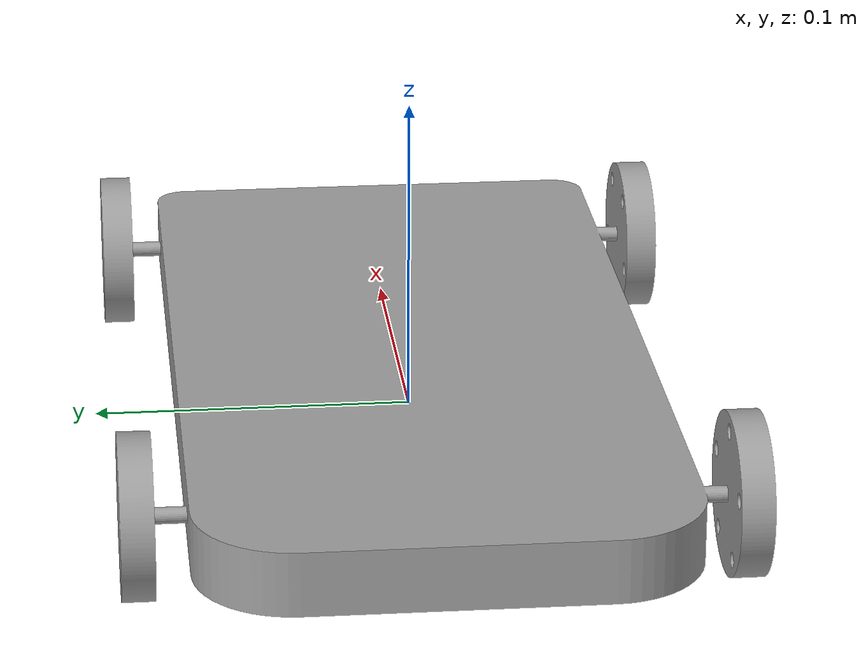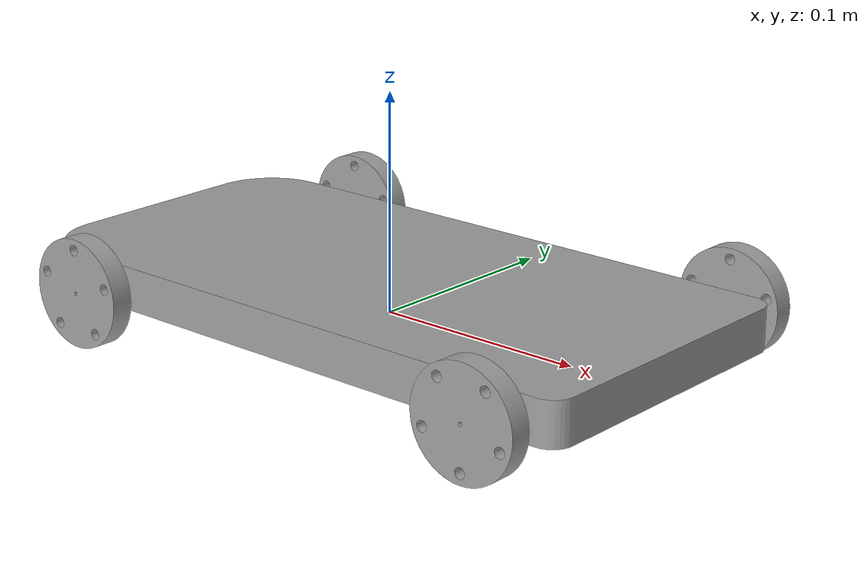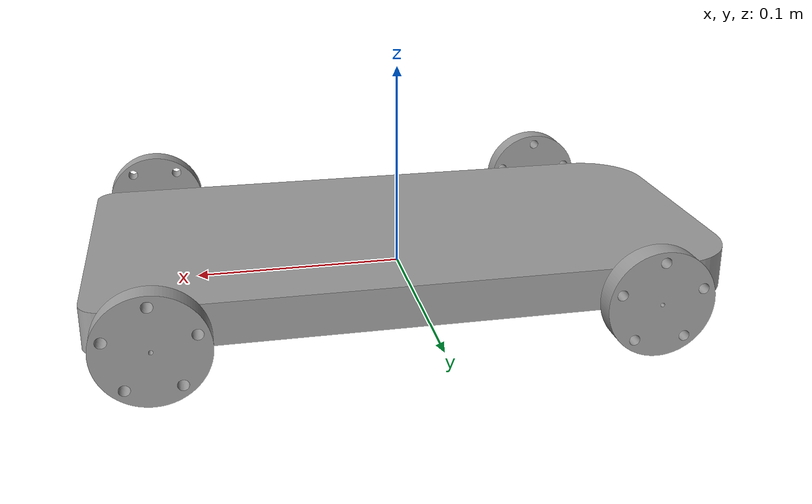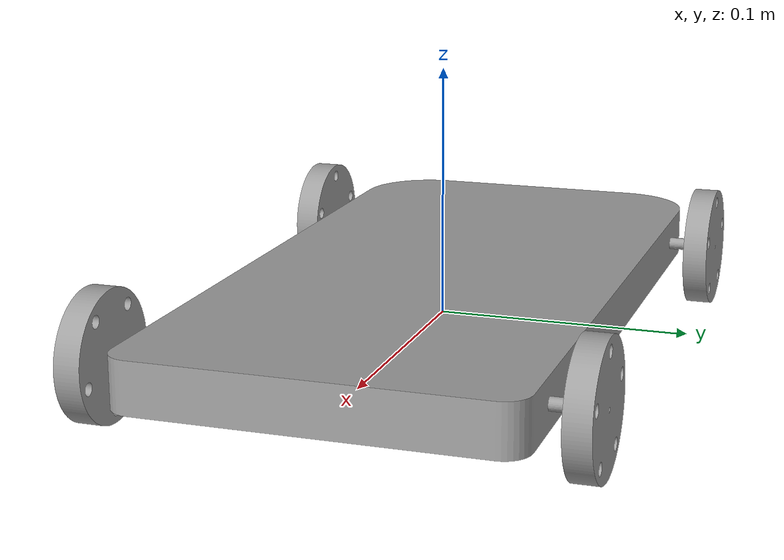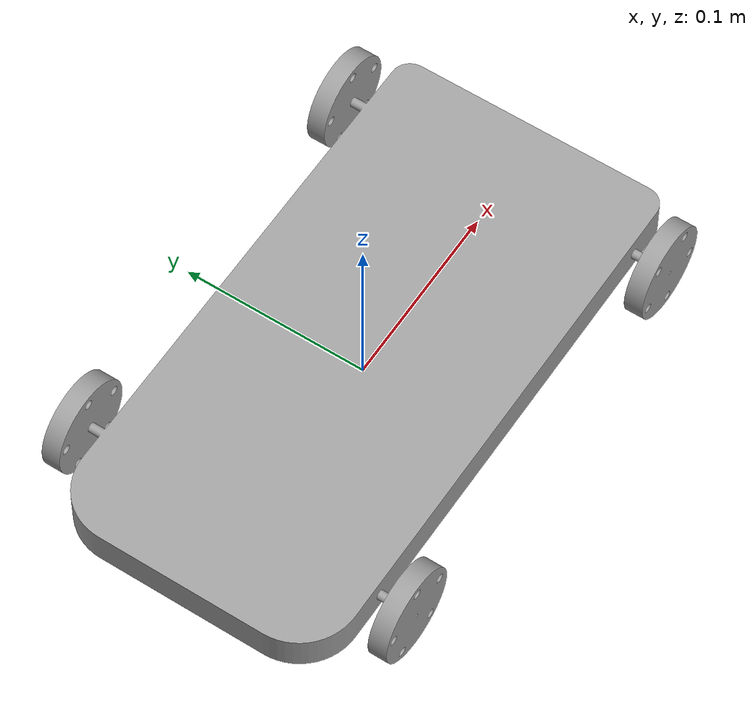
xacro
<?xml version="1.0" ?>
<robot name="cart" xmlns:xacro="http://www.ros.org/wiki/xacro">

<xacro:property name = "PI" value = "3.14159265359"/>
<xacro:include filename="$(find cart_description)/urdf/materials.xacro" />
<xacro:include filename="$(find cart_description)/urdf/cart.trans" />

<link name = "world"/>

<link name="base_link">
  <inertial>
    <origin xyz="0.0011074745051802052 0.010000000000065588 0.0" rpy="0 0 0"/>
    <mass value="7.003780398889468"/>
    <inertia ixx="0.013199" iyy="0.064626" izz="0.051893" ixy="0.0" iyz="0.0" ixz="0.0"/>
  </inertial>
  <visual>
    <origin xyz="0 0 0" rpy="0 0 0"/>
    <geometry>
      <mesh filename="package://cart_description/meshes/base_link.stl" scale="0.001 0.001 0.001"/>
    </geometry>
    <material name="steel_satin"/>
  </visual>
  <collision>
    <origin xyz="0 0 0" rpy="0 0 0"/>
    <geometry>
      <mesh filename="package://cart_description/meshes/base_link.stl" scale="0.001 0.001 0.001"/>
    </geometry>
  </collision>
</link>

<joint name = "virtual_joint" type = "fixed">
  <origin xyz = "0 0 0" rpy = "${PI/2} 0 0"/>
  <parent link = "world"/>
  <child link = "base_link"/>
</joint>

<link name="wheel_v1_1">
  <inertial>
    <origin xyz="-1.3961054534661343e-14 1.49011606873084e-10 0.0049999999999999906" rpy="0 0 0"/>
    <mass value="0.14618105506510462"/>
    <inertia ixx="2.4e-05" iyy="2.4e-05" izz="4.5e-05" ixy="0.0" iyz="-0.0" ixz="0.0"/>
  </inertial>
  <visual>
    <origin xyz="0.1 -0.01 -0.085" rpy="0 0 0"/>
    <geometry>
      <mesh filename="package://cart_description/meshes/wheel_v1_1.stl" scale="0.001 0.001 0.001"/>
    </geometry>
    <material name="steel_satin"/>
  </visual>
  <collision>
    <origin xyz="0.1 -0.01 -0.085" rpy="0 0 0"/>
    <geometry>
      <mesh filename="package://cart_description/meshes/wheel_v1_1.stl" scale="0.001 0.001 0.001"/>
    </geometry>
  </collision>
</link>

<link name="wheel_v1_2">
  <inertial>
    <origin xyz="-1.3961054534661343e-14 3.469446951953614e-18 0.0049999999999999906" rpy="0 0 0"/>
    <mass value="0.14618105506510462"/>
    <inertia ixx="2.4e-05" iyy="2.4e-05" izz="4.5e-05" ixy="0.0" iyz="0.0" ixz="0.0"/>
  </inertial>
  <visual>
    <origin xyz="-0.12 -0.01 -0.085" rpy="0 0 0"/>
    <geometry>
      <mesh filename="package://cart_description/meshes/wheel_v1_2.stl" scale="0.001 0.001 0.001"/>
    </geometry>
    <material name="steel_satin"/>
  </visual>
  <collision>
    <origin xyz="-0.12 -0.01 -0.085" rpy="0 0 0"/>
    <geometry>
      <mesh filename="package://cart_description/meshes/wheel_v1_2.stl" scale="0.001 0.001 0.001"/>
    </geometry>
  </collision>
</link>

<link name="wheel_v1_3">
  <inertial>
    <origin xyz="-1.3961054534661343e-14 1.49011606873084e-10 -0.0049999999999999906" rpy="0 0 0"/>
    <mass value="0.14618105506510462"/>
    <inertia ixx="2.4e-05" iyy="2.4e-05" izz="4.5e-05" ixy="0.0" iyz="0.0" ixz="0.0"/>
  </inertial>
  <visual>
    <origin xyz="0.1 -0.01 0.085" rpy="0 0 0"/>
    <geometry>
      <mesh filename="package://cart_description/meshes/wheel_v1_3.stl" scale="0.001 0.001 0.001"/>
    </geometry>
    <material name="steel_satin"/>
  </visual>
  <collision>
    <origin xyz="0.1 -0.01 0.085" rpy="0 0 0"/>
    <geometry>
      <mesh filename="package://cart_description/meshes/wheel_v1_3.stl" scale="0.001 0.001 0.001"/>
    </geometry>
  </collision>
</link>

<link name="wheel_v1_4">
  <inertial>
    <origin xyz="-1.3961054534661343e-14 -3.469446951953614e-18 -0.0049999999999999906" rpy="0 0 0"/>
    <mass value="0.14618105506510462"/>
    <inertia ixx="2.4e-05" iyy="2.4e-05" izz="4.5e-05" ixy="-0.0" iyz="0.0" ixz="0.0"/>
  </inertial>
  <visual>
    <origin xyz="-0.12 -0.01 0.085" rpy="0 0 0"/>
    <geometry>
      <mesh filename="package://cart_description/meshes/wheel_v1_4.stl" scale="0.001 0.001 0.001"/>
    </geometry>
    <material name="steel_satin"/>
  </visual>
  <collision>
    <origin xyz="-0.12 -0.01 0.085" rpy="0 0 0"/>
    <geometry>
      <mesh filename="package://cart_description/meshes/wheel_v1_4.stl" scale="0.001 0.001 0.001"/>
    </geometry>
  </collision>
</link>

<joint name="Revolute 1" type="continuous">
  <origin xyz="-0.1 0.01 0.085" rpy="0 0 0"/>
  <parent link="base_link"/>
  <child link="wheel_v1_1"/>
  <axis xyz="0.0 0.0 1.0"/>
</joint>

<joint name="Revolute 2" type="continuous">
  <origin xyz="0.12 0.01 0.085" rpy="0 0 0"/>
  <parent link="base_link"/>
  <child link="wheel_v1_2"/>
  <axis xyz="0.0 0.0 1.0"/>
</joint>

<joint name="Revolute 3" type="continuous">
  <origin xyz="-0.1 0.01 -0.085" rpy="0 0 0"/>
  <parent link="base_link"/>
  <child link="wheel_v1_3"/>
  <axis xyz="0.0 0.0 -1.0"/>
</joint>

<joint name="Revolute 4" type="continuous">
  <origin xyz="0.12 0.01 -0.085" rpy="0 0 0"/>
  <parent link="base_link"/>
  <child link="wheel_v1_4"/>
  <axis xyz="0.0 0.0 -1.0"/>
</joint>

</robot>

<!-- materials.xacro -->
<robot name="cart" xmlns:xacro="http://www.ros.org/wiki/xacro" >

<material name="silver_default">
  <color rgba="0.700 0.700 0.700 1.000"/>
</material>
<material name="steel_satin">
  <color rgba="0.6274509803921569 0.6274509803921569 0.6274509803921569 1.0"/>
</material>

</robot>
